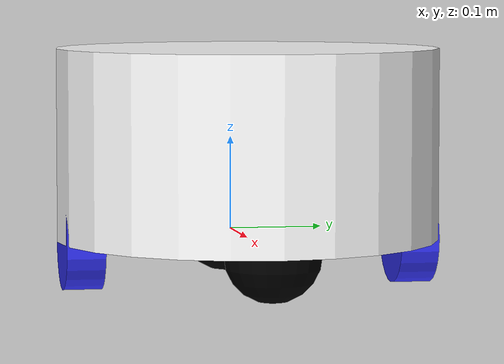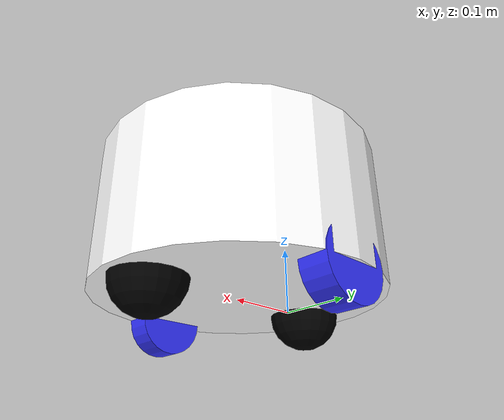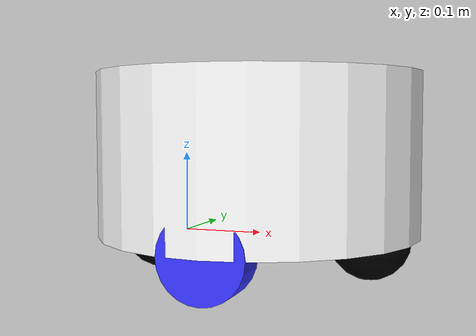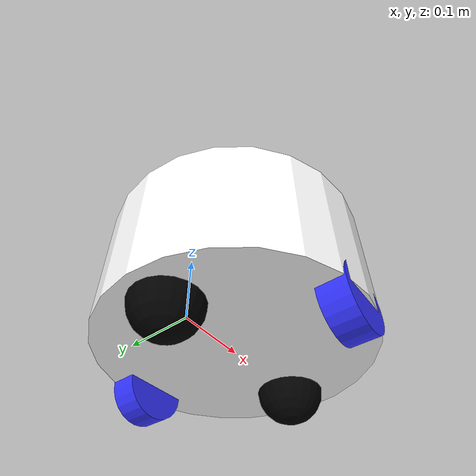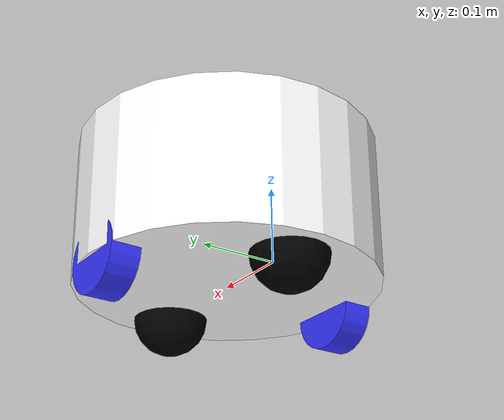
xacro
<?xml version="1.0"?>
<robot xmlns:xacro="http://www.ros.org/wiki/xacro"  >

    <xacro:include filename="inertial_macros.xacro"/>

    <material name="white">
        <color rgba=" 1 1 1 1"/>
    </material>

    <material name="orange">
        <color rgba=" 1 0.3 0.1 1"/>
    </material>

    <material name="blue">
        <color rgba="0.2 0.2 1 1"/>
    </material>

    <material name="black">
        <color rgba=" 0 0 0 1"/>
    </material>

    <material name="red">
        <color rgba="1 0 0 1"/>
    </material>

    <!-- BASE LINK-->

    <link name="base_link">

    </link>

    <!-- BASE_FOOTPRINT LINK-->

    <joint name="base_footprint_joint" type="fixed">
        <parent link="base_link"/>
        <child link="base_footprint"/>
        <origin xyz="0 0 0" rpy="0 0 0"/>

    </joint>

    <link name="base_footprint">
    </link>

    <!-- CHASSIS LINK-->

    <joint name="chassis_joint" type="fixed">

        <parent link="base_link"/>
        <child link ="chassis"/>

    </joint>

    <link name="chassis">

        <visual>
            <origin xyz="0.1 0 0.1"/>
            <geometry>

                <cylinder radius="0.2" length="0.2"/>

            </geometry>

            <material name="white"/>
        </visual>

        <collision>
            <origin xyz="0.1 0 0.1"/>
            <geometry>

                <cylinder radius="0.2" length="0.2"/>

            </geometry>

        </collision>
        <xacro:inertial_cylinder_body mass="0.5" radius="0.2" length="0.2">
            <origin xyz="0.15 0 0.075" rpy="0 0 0"/>
        </xacro:inertial_cylinder_body>

    </link>

    <gazebo reference="chassis">

        <material>Gazebo/White</material>

    </gazebo>

    <!-- LEFT WHEEL LINK-->

    <joint name="left_wheel_joint" type="continuous">
        <parent link ="base_link"/>
        <child link="left_wheel"/>
        <origin xyz="0.1 0.175 0" rpy="-${pi/2} 0 0"/>
        <axis xyz="0 0 1"/>

    </joint>

    <link name="left_wheel">
        <visual>
            <geometry>
                <cylinder radius="0.05" length="0.04"/>
            </geometry>
            <material name="blue"/>

        </visual>

        <collision>
            <geometry>
                <sphere radius="0.05" />
            </geometry>
        </collision>

        <xacro:inertial_cylinder mass="0.1" length="0.04" radius="0.05">
            <origin xyz="0 0 0" rpy="0 0 0"/>
        </xacro:inertial_cylinder>

    </link>

    <gazebo reference="left_wheel">

        <material>Gazebo/Blue</material>

    </gazebo>

     <!-- RIGHT WHEEL LINK-->

     <joint name="right_wheel_joint" type="continuous">
        <parent link ="base_link"/>
        <child link="right_wheel"/>
        <origin xyz="0.1 -0.175 0" rpy="${pi/2} 0 0"/>
        <axis xyz="0 0 -1"/>

    </joint>

    <link name="right_wheel">
        <visual>
            <geometry>
                <cylinder radius="0.05" length="0.04"/>
            </geometry>
            <material name="blue"/>

        </visual>

        <collision>
            <geometry>
                <sphere radius="0.05" />
            </geometry>
        </collision>

        <xacro:inertial_cylinder mass="0.1" length="0.04" radius="0.05">
            <origin xyz="0 0 0" rpy="0 0 0"/>
        </xacro:inertial_cylinder>

    </link>

    <gazebo reference="right_wheel">

        <material>Gazebo/Blue</material>

    </gazebo>

    <!-- FRONT CASTER WHEEL LINK-->

    <joint name="front_caster_wheel_joint" type="fixed">
        <parent link="chassis"/>
        <child link="front_caster_wheel"/>
        <origin xyz="0.24 0 0"/>

    </joint>

    <link name="front_caster_wheel">
        <visual>
            <geometry>
                <sphere radius="0.05"/>
            </geometry>
            <material name="black"/>
        </visual>

        <collision>
            <geometry>
                <sphere radius="0.05"/>
            </geometry>
        </collision>

        <xacro:inertial_sphere mass="0.1" radius="0.05">
            <origin xyz="0 0 0" rpy="0 0 0"/>
        </xacro:inertial_sphere>

    </link>

    <gazebo reference="front_caster_wheel">

        <material>Gazebo/Black</material>
        <mu1 value="0.001"/>
        <mu2 value="0.001"/>
    </gazebo>

    <!-- BACK CASTER WHEEL LINK-->

    <joint name="back_caster_wheel_joint" type="fixed">
        <parent link="chassis"/>
        <child link="back_caster_wheel"/>
        <origin xyz="-0.035 0 0"/>

    </joint>

    <link name="back_caster_wheel">
        <visual>
            <geometry>
                <sphere radius="0.05"/>
            </geometry>
            <material name="black"/>
        </visual>

        <collision>
            <geometry>
                <sphere radius="0.05"/>
            </geometry>
        </collision>
    </link>

    <gazebo reference="back_caster_wheel">

        <material>Gazebo/Black</material>
        <mu1 value="0.001"/>
        <mu2 value="0.001"/>
    </gazebo>

</robot>

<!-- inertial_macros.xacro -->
<robot xmlns:xacro="http://www.ros.org/wiki/xacro" >

    <!-- Specify some standard inertial calculations https://en.wikipedia.org/wiki/List_of_moments_of_inertia -->
    <!-- These make use of xacro's mathematical functionality -->

    <xacro:macro name="inertial_sphere" params="mass radius *origin">
        <inertial>
            <xacro:insert_block name="origin"/>
            <mass value="${mass}" />
            <inertia ixx="${(2/5) * mass * (radius*radius)}" ixy="0.0" ixz="0.0"
                    iyy="${(2/5) * mass * (radius*radius)}" iyz="0.0"
                    izz="${(2/5) * mass * (radius*radius)}" />
        </inertial>
    </xacro:macro>

    <xacro:macro name="inertial_box" params="mass x y z *origin">
        <inertial>
            <xacro:insert_block name="origin"/>
            <mass value="${mass}" />
            <inertia ixx="${(1/12) * mass * (y*y+z*z)}" ixy="0.0" ixz="0.0"
                    iyy="${(1/12) * mass * (x*x+z*z)}" iyz="0.0"
                    izz="${(1/12) * mass * (x*x+y*y)}" />
        </inertial>
    </xacro:macro>

    <xacro:macro name="inertial_cylinder_body" params="mass radius length *origin">
    <inertial>
        <xacro:insert_block name="origin"/>
        <mass value="${mass}" />
        <inertia ixx="${(1/12) * mass * (3 * radius * radius + length * length)}" ixy="0.0" ixz="0.0"
                 iyy="${(1/2) * mass * radius * radius}" iyz="0.0"
                 izz="${(1/12) * mass * (radius * radius + length * length)}" />
    </inertial>
</xacro:macro>

    <xacro:macro name="inertial_cylinder" params="mass length radius *origin">
        <inertial>
            <xacro:insert_block name="origin"/>
            <mass value="${mass}" />
            <inertia ixx="${(1/12) * mass * (3*radius*radius + length*length)}" ixy="0.0" ixz="0.0"
                    iyy="${(1/12) * mass * (3*radius*radius + length*length)}" iyz="0.0"
                    izz="${(1/2) * mass * (radius*radius)}" />
        </inertial>
    </xacro:macro>

</robot>
